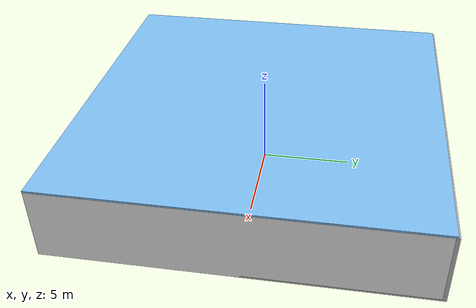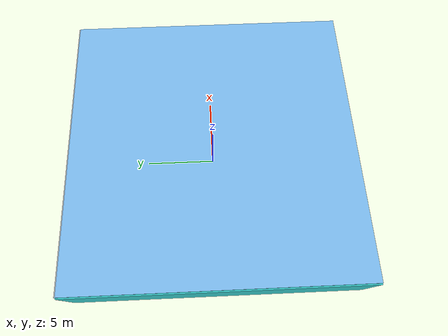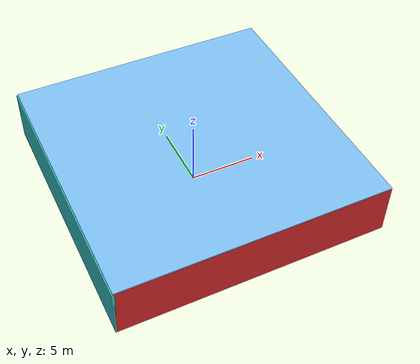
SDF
<sdf version="1.4">
 <world name="default">
  <physics type="ode">
   <max_step_size>0.001</max_step_size>
   <real_time_factor>1</real_time_factor>
   <real_time_update_rate>1000</real_time_update_rate>
   <gravity>0 0 -9.8</gravity>
  </physics>
  <scene><ambient>0.4 0.4 0.4 1</ambient><background>0.7 0.7 0.7 1</background><shadows>1</shadows></scene>
  <model name="Surrounding">
   <static>1</static>
   <link name="Ceiling">
    <collision name="Ceiling_Collision"><geometry><box><size>20 20 0.1</size></box></geometry></collision>
    <visual name="Ceiling_Visual">
     <geometry><box><size>20 20 0.1</size></box></geometry>
     <material>
      <script><uri>file://media/materials/scripts/gazebo.material</uri><name>Gazebo/SkyBlue</name></script>
     </material>
    </visual>
    <pose>0 0 4.05 0 0 0</pose>
   </link>
   <link name="Wall_South">
    <collision name="Wall_South_Collision">
     <geometry><box><size>20 0 4</size></box></geometry>
     <pose>0 0 2 0 -0 0</pose>
    </collision>
    <visual name="Wall_South_Visual">
     <pose>0 0 2 0 -0 0</pose>
     <geometry><box><size>20 0 4</size></box></geometry>
     <material>
      <script><uri>file://media/materials/scripts/gazebo.material</uri><name>Gazebo/Red</name></script>
     </material>
    </visual>
    <velocity_decay><linear>0</linear><angular>0</angular></velocity_decay>
    <pose>0 -10 0 0 -0 0</pose>
   </link>
   <link name="Wall_East">
    <collision name="Wall_21_Collision">
     <geometry><box><size>20 0 4</size></box></geometry>
     <pose>0 0 2 0 -0 0</pose>
    </collision>
    <visual name="Wall_21_Visual">
     <pose>0 0 2 0 -0 0</pose>
     <geometry><box><size>20 0 4</size></box></geometry>
     <material>
      <script><uri>file://media/materials/scripts/gazebo.material</uri><name>Gazebo/WhiteGlow</name></script>
     </material>
    </visual>
    <velocity_decay><linear>0</linear><angular>0</angular></velocity_decay>
    <pose>10 0 0 0 -0 1.5708</pose>
   </link>
   <link name="Wall_North">
    <collision name="Wall_22_Collision">
     <geometry><box><size>20 0.2 4</size></box></geometry>
     <pose>0 0 2 0 -0 0</pose>
    </collision>
    <visual name="Wall_22_Visual">
     <pose>0 0 2 0 -0 0</pose>
     <geometry><box><size>20 0.2 4</size></box></geometry>
     <material>
      <script><uri>file://media/materials/scripts/gazebo.material</uri><name>Gazebo/PioneerBody</name></script>
     </material>
    </visual>
    <velocity_decay><linear>0</linear><angular>0</angular></velocity_decay>
    <pose>0 10 0 0 -0 0</pose>
   </link>
   <link name="Wall_West">
    <collision name="Wall_23_Collision">
     <geometry><box><size>20 0.2 4</size></box></geometry>
     <pose>0 0 2 0 -0 0</pose>
    </collision>
    <visual name="Wall_23_Visual">
     <pose>0 0 2 0 -0 0</pose>
     <geometry><box><size>20 0.2 4</size></box></geometry>
     <material>
      <script><uri>file://media/materials/scripts/gazebo.material</uri><name>Gazebo/TurquoiseGlow</name></script>
     </material>
    </visual>
    <velocity_decay><linear>0</linear><angular>0</angular></velocity_decay>
    <pose>-10 0 0 0 0 -1.5708</pose>
   </link>
   <link name="Ground_link">
    <collision name="collision">
     <pose>0 0 .05 0 -0 0</pose>
     <geometry><box><size>20 20 0.1</size></box></geometry>
    </collision>
    <visual name="visual">
     <pose>0 0 .05 0 -0 0</pose>
     <geometry><box><size>20 20 0.1</size></box></geometry>
     <material>
      <script><uri>file://media/materials/scripts/gazebo.material</uri><name>Gazebo/GreyTransparent</name></script>
     </material>
    </visual>
   </link>
   <static>1</static>
  </model>
  <spherical_coordinates>
   <surface_model>EARTH_WGS84</surface_model>
   <latitude_deg>0</latitude_deg>
   <longitude_deg>0</longitude_deg>
   <elevation>0</elevation>
   <heading_deg>0</heading_deg>
  </spherical_coordinates>
  <light name="lightball_0" type="diffuse">
   <diffuse>0.8 0.8 0.8 1</diffuse>
   <specular>0.2 0.2 0.2 1</specular>
   <attenuation>
    <range>100</range>
    <constant>0.7</constant>
    <linear>0.01</linear>
    <quadratic>0.001</quadratic>
   </attenuation>
   <direction>-0.5 0.1 -0.9</direction>
   <pose>5.00545501098 1.03103642527 3.13614384373 0 0 0</pose>
  </light>
  <light name="lightball_1" type="diffuse">
   <diffuse>0.8 0.8 0.8 1</diffuse>
   <specular>0.2 0.2 0.2 1</specular>
   <attenuation>
    <range>100</range>
    <constant>0.7</constant>
    <linear>0.01</linear>
    <quadratic>0.001</quadratic>
   </attenuation>
   <direction>-0.5 0.1 -0.9</direction>
   <pose>-8.61009909633 -2.2206606972 0.678026235541 0 0 0</pose>
  </light>
  <light name="lightball_2" type="diffuse">
   <diffuse>0.8 0.8 0.8 1</diffuse>
   <specular>0.2 0.2 0.2 1</specular>
   <attenuation>
    <range>100</range>
    <constant>0.7</constant>
    <linear>0.01</linear>
    <quadratic>0.001</quadratic>
   </attenuation>
   <direction>-0.5 0.1 -0.9</direction>
   <pose>1.63317603415 9.61705196361 1.27129450504 0 0 0</pose>
  </light>
  <light name="lightball_3" type="diffuse">
   <diffuse>0.8 0.8 0.8 1</diffuse>
   <specular>0.2 0.2 0.2 1</specular>
   <attenuation>
    <range>100</range>
    <constant>0.7</constant>
    <linear>0.01</linear>
    <quadratic>0.001</quadratic>
   </attenuation>
   <direction>-0.5 0.1 -0.9</direction>
   <pose>4.16317699995 -7.04666867353 2.32564450517 0 0 0</pose>
  </light>
  <light name="lightball_4" type="diffuse">
   <diffuse>0.8 0.8 0.8 1</diffuse>
   <specular>0.2 0.2 0.2 1</specular>
   <attenuation>
    <range>100</range>
    <constant>0.7</constant>
    <linear>0.01</linear>
    <quadratic>0.001</quadratic>
   </attenuation>
   <direction>-0.5 0.1 -0.9</direction>
   <pose>1.79257323168 6.54974788578 0.907091459931 0 0 0</pose>
  </light>
  <light name="lightball_5" type="diffuse">
   <diffuse>0.8 0.8 0.8 1</diffuse>
   <specular>0.2 0.2 0.2 1</specular>
   <attenuation>
    <range>100</range>
    <constant>0.7</constant>
    <linear>0.01</linear>
    <quadratic>0.001</quadratic>
   </attenuation>
   <direction>-0.5 0.1 -0.9</direction>
   <pose>2.16223058147 2.56198744803 3.51755562348 0 0 0</pose>
  </light>
  <light name="lightball_6" type="diffuse">
   <diffuse>0.8 0.8 0.8 1</diffuse>
   <specular>0.2 0.2 0.2 1</specular>
   <attenuation>
    <range>100</range>
    <constant>0.7</constant>
    <linear>0.01</linear>
    <quadratic>0.001</quadratic>
   </attenuation>
   <direction>-0.5 0.1 -0.9</direction>
   <pose>-7.53561513553 7.56126442742 3.76746322422 0 0 0</pose>
  </light>
  <include><uri>model://cabinet</uri><pose>-7.88243476545 -8.00051851563 0 0 0 0.896466501664</pose></include>
  <include><uri>model://cabinet</uri><pose>-6.72767520457 4.21014713434 0 0 0 0.496705997622</pose></include>
  <include><uri>model://cabinet</uri><pose>-0.998194381472 -7.26602293262 0 0 0 1.60134206348</pose></include>
  <include>
   <uri>model://textured_shapes</uri>
   <pose>-1.90628968411 -4.9139448221 0 0 0 1.99753450664</pose>
  </include>
  <include><uri>model://cabinet</uri><pose>3.72513940039 -8.01025672651 0 0 0 1.63353196792</pose></include>
  <include><uri>model://table</uri><pose>7.15538588628 7.05219231029 0 0 0 2.06276368036</pose></include>
 </world>
</sdf>

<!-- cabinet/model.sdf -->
<sdf version="1.5">
  <model name="cabinet">
    <static>true</static>
    <link name="cabinet_bottom_plate">
      <inertial>
        <pose>0 0 -1 0 0 0</pose>
        <inertia>
          <ixx>2.050000</ixx>
          <ixy>0</ixy>
          <ixz>0</ixz>
          <iyy>2.050000</iyy>
          <iyz>0</iyz>
          <izz>2.050000</izz>
        </inertia>
        <mass>25.000000</mass>
      </inertial>
      <collision name="cabinet_bottom_plate_geom">
        <pose>0 0 0.010000 0 0 0</pose>
        <geometry>
          <box>
            <size>0.450000 0.450000 0.020000</size>
          </box>
        </geometry>
      </collision>
      <visual name="cabinet_bottom_plate_geom_visual">
        <pose>0 0 0.010000 0 0 0</pose>
        <geometry>
          <box>
            <size>0.450000 0.450000 0.020000</size>
          </box>
        </geometry>
        <material>
          <script>
            <uri>model://media/materials/scripts/gazebo.material</uri>
            <name>Gazebo/Wood</name>
          </script>
        </material>
      </visual>
      <collision name="cabinet_bottom_plate_geom_cabinet_back_plate">
        <pose>0.235000 0 0.510000 0 0 0</pose>
        <geometry>
          <box>
            <size>0.020000 0.450000 1.020000</size>
          </box>
        </geometry>
      </collision>
      <visual name="cabinet_bottom_plate_geom_cabinet_back_plate_visual">
        <pose>0.235000 0 0.510000 0 0 0</pose>
        <geometry>
          <box>
            <size>0.020000 0.450000 1.020000</size>
          </box>
        </geometry>
        <material>
          <script>
            <uri>model://media/materials/scripts/gazebo.material</uri>
            <name>Gazebo/Wood</name>
          </script>
        </material>
      </visual>
      <collision name="cabinet_bottom_plate_geom_cabinet_left_plate">
        <pose>0 0.235000 0.510000 0 0 0</pose>
        <geometry>
          <box>
            <size>0.450000 0.020000 1.020000</size>
          </box>
        </geometry>
      </collision>
      <visual name="cabinet_bottom_plate_geom_cabinet_left_plate_visual">
        <pose>0 0.235000 0.510000 0 0 0</pose>
        <geometry>
          <box>
            <size>0.450000 0.020000 1.020000</size>
          </box>
        </geometry>
        <material>
          <script>
            <uri>model://media/materials/scripts/gazebo.material</uri>
            <name>Gazebo/Wood</name>
          </script>
        </material>
      </visual>
      <collision name="cabinet_bottom_plate_geom_cabinet_middle_plate">
        <pose>0 0 0.510000 0 0 0</pose>
        <geometry>
          <box>
            <size>0.450000 0.450000 0.020000</size>
          </box>
        </geometry>
      </collision>
      <visual name="cabinet_bottom_plate_geom_cabinet_middle_plate_visual">
        <pose>0 0 0.510000 0 0 0</pose>
        <geometry>
          <box>
            <size>0.450000 0.450000 0.020000</size>
          </box>
        </geometry>
        <material>
          <script>
            <uri>model://media/materials/scripts/gazebo.material</uri>
            <name>Gazebo/Wood</name>
          </script>
        </material>
      </visual>
      <collision name="cabinet_bottom_plate_geom_cabinet_right_plate">
        <pose>0 -0.235000 0.510000 0 0 0</pose>
        <geometry>
          <box>
            <size>0.450000 0.020000 1.020000</size>
          </box>
        </geometry>
      </collision>
      <visual name="cabinet_bottom_plate_geom_cabinet_right_plate_visual">
        <pose>0 -0.235000 0.510000 0 0 0</pose>
        <geometry>
          <box>
            <size>0.450000 0.020000 1.020000</size>
          </box>
        </geometry>
        <material>
          <script>
            <uri>model://media/materials/scripts/gazebo.material</uri>
            <name>Gazebo/Wood</name>
          </script>
        </material>
      </visual>
      <collision name="cabinet_bottom_plate_geom_cabinet_top_plate">
        <pose>0 0 1.010000 0 0 0</pose>
        <geometry>
          <box>
            <size>0.450000 0.450000 0.020000</size>
          </box>
        </geometry>
      </collision>
      <visual name="cabinet_bottom_plate_geom_cabinet_top_plate_visual">
        <pose>0 0 1.010000 0 0 0</pose>
        <geometry>
          <box>
            <size>0.450000 0.450000 0.020000</size>
          </box>
        </geometry>
        <material>
          <script>
            <uri>model://media/materials/scripts/gazebo.material</uri>
            <name>Gazebo/Wood</name>
          </script>
        </material>
      </visual>
    </link>
  </model>
</sdf>

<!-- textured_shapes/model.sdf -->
<sdf version="1.6">
  <model name="textured_shapes">
    <pose>0 0 0.5 0 0 0</pose>
    <link name="box">
      <pose>0 -1.5 0 0 0 0</pose>
      <collision name="collision">
        <geometry>
          <box>
            <size>1 1 1</size>
          </box>
        </geometry>
      </collision>
      <visual name="visual">
        <geometry>
          <box>
            <size>1 1 1</size>
          </box>
        </geometry>
        <material>
          <script>
            <uri>model://../model_source/models/textured_shapes/materials/scripts</uri>
            <uri>model://../model_source/models/textured_shapes/materials/textures</uri>
            <name>TexturedShape/Squares</name>
          </script>
        </material>
      </visual>
    </link>
    <link name="sphere">
      <collision name="collision">
        <geometry>
          <sphere>
            <radius>0.5</radius>
          </sphere>
        </geometry>
      </collision>
      <visual name="visual">
        <geometry>
          <sphere>
            <radius>0.5</radius>
          </sphere>
        </geometry>
        <material>
          <script>
            <uri>model://../model_source/models/textured_shapes/materials/scripts</uri>
            <uri>model://../model_source/models/textured_shapes/materials/textures</uri>
            <name>TexturedShape/Squares</name>
          </script>
        </material>
      </visual>
    </link>
    <link name="cylinder">
      <pose>0 1.5 0 0 0 0</pose>
      <collision name="collision">
        <geometry>
          <cylinder>
            <radius>0.5</radius>
            <length>1</length>
          </cylinder>
        </geometry>
      </collision>
      <visual name="visual">
        <geometry>
          <cylinder>
            <radius>0.5</radius>
            <length>1</length>
          </cylinder>
        </geometry>
        <material>
          <script>
            <uri>model://../model_source/models/textured_shapes/materials/scripts</uri>
            <uri>model://../model_source/models/textured_shapes/materials/textures</uri>
            <name>TexturedShape/Squares</name>
          </script>
        </material>
      </visual>
    </link>
  </model>
</sdf>

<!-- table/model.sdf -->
<sdf version="1.5">
  <model name="table">
    <static>true</static>
    <link name="link">
      <collision name="surface">
        <pose>0 0 1.0 0 0 0</pose>
        <geometry>
          <box>
            <size>1.5 0.8 0.03</size>
          </box>
        </geometry>
        <surface>
          <friction>
            <ode>
              <mu>0.6</mu>
              <mu2>0.6</mu2>
            </ode>
          </friction>
        </surface>
      </collision>
      <visual name="visual1">
        <pose>0 0 1.0 0 0 0</pose>
        <geometry>
          <box>
            <size>1.5 0.8 0.03</size>
          </box>
        </geometry>
        <material>
          <script>
            <uri>model://media/materials/scripts/gazebo.material</uri>
            <name>Gazebo/Wood</name>
          </script>
        </material>
      </visual>
      <collision name="front_left_leg">
        <pose>0.68 0.38 0.5 0 0 0</pose>
        <geometry>
          <cylinder>
            <radius>0.02</radius>
            <length>1.0</length>
          </cylinder>
        </geometry>
      </collision>
      <visual name="front_left_leg">
        <pose>0.68 0.38 0.5 0 0 0</pose>
        <geometry>
          <cylinder>
            <radius>0.02</radius>
            <length>1.0</length>
          </cylinder>
        </geometry>
        <material>
          <script>
            <uri>model://media/materials/scripts/gazebo.material</uri>
            <name>Gazebo/Grey</name>
          </script>
        </material>
      </visual>
      <collision name="front_right_leg">
        <pose>0.68 -0.38 0.5 0 0 0</pose>
        <geometry>
          <cylinder>
            <radius>0.02</radius>
            <length>1.0</length>
          </cylinder>
        </geometry>
      </collision>
      <visual name="front_right_leg">
        <pose>0.68 -0.38 0.5 0 0 0</pose>
        <geometry>
          <cylinder>
            <radius>0.02</radius>
            <length>1.0</length>
          </cylinder>
        </geometry>
        <material>
          <script>
            <uri>model://media/materials/scripts/gazebo.material</uri>
            <name>Gazebo/Grey</name>
          </script>
        </material>
      </visual>
      <collision name="back_right_leg">
        <pose>-0.68 -0.38 0.5 0 0 0</pose>
        <geometry>
          <cylinder>
            <radius>0.02</radius>
            <length>1.0</length>
          </cylinder>
        </geometry>
      </collision>
      <visual name="back_right_leg">
        <pose>-0.68 -0.38 0.5 0 0 0</pose>
        <geometry>
          <cylinder>
            <radius>0.02</radius>
            <length>1.0</length>
          </cylinder>
        </geometry>
        <material>
          <script>
            <uri>model://media/materials/scripts/gazebo.material</uri>
            <name>Gazebo/Grey</name>
          </script>
        </material>
      </visual>
      <collision name="back_left_leg">
        <pose>-0.68 0.38 0.5 0 0 0</pose>
        <geometry>
          <cylinder>
            <radius>0.02</radius>
            <length>1.0</length>
          </cylinder>
        </geometry>
      </collision>
      <visual name="back_left_leg">
        <pose>-0.68 0.38 0.5 0 0 0</pose>
        <geometry>
          <cylinder>
            <radius>0.02</radius>
            <length>1.0</length>
          </cylinder>
        </geometry>
        <material>
          <script>
            <uri>model://media/materials/scripts/gazebo.material</uri>
            <name>Gazebo/Grey</name>
          </script>
        </material>
      </visual>
    </link>
  </model>
</sdf>
